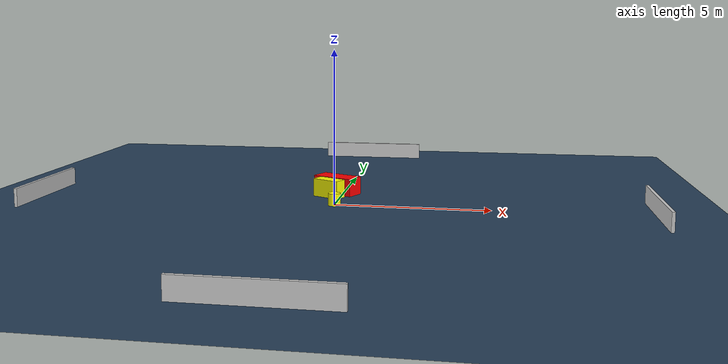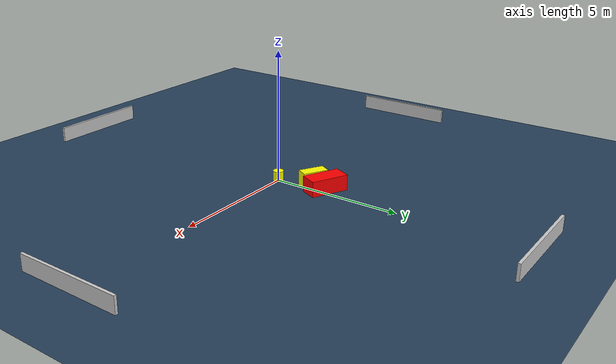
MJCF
<?xml version="1.0" ?>
<mujoco model="generated_environment">
  <option timestep="0.01" integrator="RK4" cone="elliptic"/>
  <default>
    <geom density="1"/>
  </default>
  <asset>
    <texture builtin="gradient" height="3072" name="skybox" rgb1="0.3 0.5 0.7" rgb2="0 0 0" type="skybox" width="512"/>
    <texture builtin="checker" height="300" name="groundplane" rgb1="0.2 0.3 0.4" rgb2="0.1 0.2 0.3" type="2d" width="300"/>
    <material name="groundplane" reflectance="0.2" texrepeat="5 5" texture="groundplane"/>
  </asset>
  <worldbody>
    <light dir="0 0 -1" directional="true" pos="0 0 1.5"/>
    <geom condim="3" friction="0.5 0.005 0.001" material="groundplane" name="floor" pos="0 0 0" size="0 0 0.05" type="plane"/>
    <body name="walls">
      <geom name="wall_1" condim="4" pos="-10.0 0.0 0.3" rgba="0.800000011920929 0.800000011920929 0.800000011920929 1.0" size="0.05 2.0 0.3" type="box"/>
      <geom name="wall_2" condim="4" pos="10.0 0.0 0.3" rgba="0.800000011920929 0.800000011920929 0.800000011920929 1.0" size="0.05 2.0 0.3" type="box"/>
      <geom name="wall_3" condim="4" pos="0.0 -10.0 0.3" rgba="0.800000011920929 0.800000011920929 0.800000011920929 1.0" size="2.0 0.05 0.3" type="box"/>
      <geom name="wall_4" condim="4" pos="0.0 10.0 0.3" rgba="0.800000011920929 0.800000011920929 0.800000011920929 1.0" size="2.0 0.05 0.3" type="box"/>
    </body>
    <body name="robot">
      <joint name="joint_x" type="slide" pos="0 0 0" axis="1 0 0"/>
      <joint name="joint_y" type="slide" pos="0 0 0" axis="0 1 0"/>
      <geom name="robot" type="cylinder" pos="0.0 0.0 0.2" size="0.2 0.2 0.0" mass="5.0" friction="1.0 0.005 0.0001" condim="4" rgba="1.0 1.0 0.0 1.0"/>
    </body>
    <body name="obstacle_1_movable">
      <geom name="obstacle_1_movable" condim="4" pos="-0.40976137194844275 1.3163011339283113 0.3" euler="0 0 241.5884085649689" friction="0.0 0.005 0.001" rgba="1.0 1.0 0.0 1.0" size="0.22447836265345084 0.496969858532367 0.3" type="box" mass="0.1"/>
      <joint type="free"/>
    </body>
    <body name="obstacle_2_static">
      <geom name="obstacle_2_static" condim="4" pos="-0.22543195019475168 1.9572499103853906 0.3" euler="0 0 65.08549175631883" friction="0.0 0.005 0.001" rgba="1.0 0.0 0.0 1.0" size="0.34434191025979644 0.7368714654252488 0.3" type="box"/>
    </body>
  </worldbody>
  <actuator>
    <motor name="actuator_x" joint="joint_x" gear="1" ctrlrange="-1 1"/>
    <motor name="actuator_y" joint="joint_y" gear="1" ctrlrange="-1 1"/>
  </actuator>
</mujoco>
